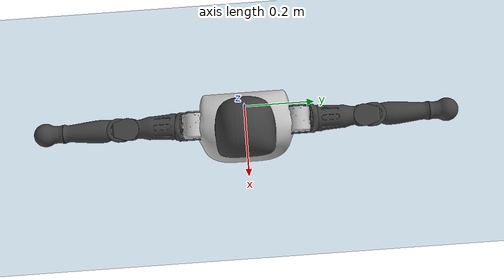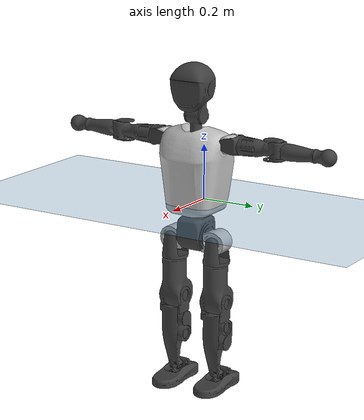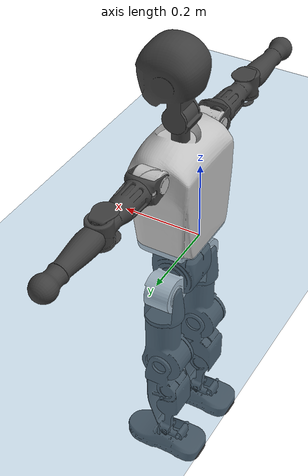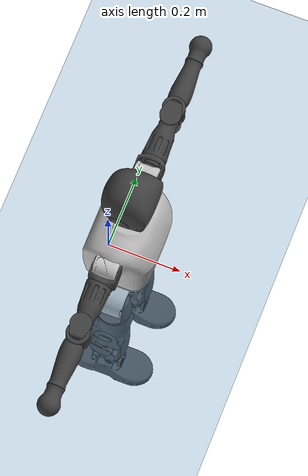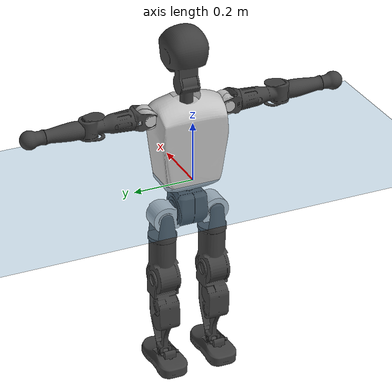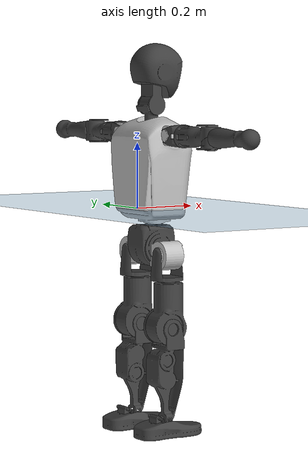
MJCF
<mujoco model="T1">
  <compiler angle="radian" assetdir="assets" balanceinertia="true" inertiafromgeom="false"/>

  <option timestep="0.005" density="1.2" viscosity="2e-05"/>

  <size nkey="1"/>

  <visual>
    <quality shadowsize="8192"/>
    <map shadowclip="0.5"/>
  </visual>

  <default>
    <default class="/">
      <joint armature="0.01" damping="0.01" frictionloss="0.1"/>
      <geom contype="0" conaffinity="0" group="1" solref="-1000 -80"/>
      <site size="0.01 0.005 0.005" group="5"/>
      <general forcelimited="true" biastype="affine" gainprm="25" biasprm="0 -25 -0.6"/>
      <default class="t1">
        <geom rgba="0.25 0.25 0.25 1"/>
        <default class="visual">
          <geom type="mesh" group="2"/>
        </default>
        <default class="collision">
          <geom group="3"/>
        </default>
        <default class="foot">
          <geom size="0.1115 0.05 0.015" type="box" condim="6" group="4" priority="1" solimp="0.015 1 0.015"/>
        </default>
        <default class="reward_collision_sphere">
          <geom group="5" rgba="1 0 0 1"/>
        </default>
      </default>
    </default>
  </default>

  <asset>
    <texture type="skybox" colorspace="auto" name="//unnamed_texture_0" builtin="gradient" rgb1="0.95 0.95 0.95" rgb2="0.95 0.95 0.95" width="100" height="600"/>
    <texture type="2d" colorspace="auto" name="texplane" builtin="checker" rgb1="0.345 0.575 0.748" rgb2="0.345 0.575 0.748" markrgb="1 1 1" width="512" height="512"/>
    <material name="MatPlane" class="/" texture="texplane" texuniform="true" texrepeat="2 2" specular="0.9"/>
    <mesh name="Trunk" class="/" file="Trunk.stl"/>
    <mesh name="H1" class="/" file="H1.stl"/>
    <mesh name="H2" class="/" file="H2.stl"/>
    <mesh name="AL1" class="/" file="AL1.stl"/>
    <mesh name="AL2" class="/" file="AL2.stl"/>
    <mesh name="AL3" class="/" file="AL3.stl"/>
    <mesh name="left_hand_link" class="/" file="left_hand_link.stl"/>
    <mesh name="AR1" class="/" file="AR1.stl"/>
    <mesh name="AR2" class="/" file="AR2.stl"/>
    <mesh name="AR3" class="/" file="AR3.stl"/>
    <mesh name="right_hand_link" class="/" file="right_hand_link.stl"/>
    <mesh name="Waist" class="/" file="Waist.stl"/>
    <mesh name="Hip_Pitch_Left" class="/" file="Hip_Pitch_Left.stl"/>
    <mesh name="Hip_Roll_Left" class="/" file="Hip_Roll_Left.stl"/>
    <mesh name="Hip_Yaw_Left" class="/" file="Hip_Yaw_Left.stl"/>
    <mesh name="Shank_Left" class="/" file="Shank_Left.stl"/>
    <mesh name="Ankle_Cross_Left" class="/" file="Ankle_Cross_Left.stl"/>
    <mesh name="left_foot_link" class="/" file="left_foot_link.stl"/>
    <mesh name="Hip_Pitch_Right" class="/" file="Hip_Pitch_Right.stl"/>
    <mesh name="Hip_Roll_Right" class="/" file="Hip_Roll_Right.stl"/>
    <mesh name="Hip_Yaw_Right" class="/" file="Hip_Yaw_Right.stl"/>
    <mesh name="Shank_Right" class="/" file="Shank_Right.stl"/>
    <mesh name="Ankle_Cross_Right" class="/" file="Ankle_Cross_Right.stl"/>
    <mesh name="right_foot_link" class="/" file="right_foot_link.stl"/>
  </asset>

  <worldbody>
    <geom name="floor" class="/" size="100 100 0.125" type="plane" group="0" material="MatPlane"/>
    <light name="toplight_shadow" class="/" pos="0 0 5" dir="0.0990148 0.0990148 -0.990148" type="directional" ambient="0.04 0.04 0.04" diffuse="0.55 0.55 0.55" specular="0.12 0.12 0.12"/>
    <light name="toplight_fill" class="/" pos="0 0 5" dir="0.0990148 0.0990148 -0.990148" type="directional" castshadow="false" ambient="0.04 0.04 0.04" diffuse="0.3 0.3 0.3" specular="0.08 0.08 0.08"/>
    <body name="trunk" childclass="t1" pos="0.000147397 -0.000655492 0.00147545" quat="1 1.0079e-05 1.62903e-05 -2.39467e-05">
      <inertial pos="0.0451989 -0.00212413 0.109671" quat="0.999947 0.00155501 -0.0101397 0.00113587" mass="8.52072" diaginertia="0.03402 0.0312162 0.0678645"/>
      <joint name="//unnamed_joint_0" type="free" armature="0" damping="0" frictionloss="0"/>
      <geom name="//unnamed_geom_1" class="visual" rgba="0.76 0.76 0.76 1" mesh="Trunk"/>
      <geom name="//unnamed_geom_2" class="collision" size="0.067256 0.0896746 0.134512" pos="0.0490986 0 0.12464" type="box"/>
      <geom name="//unnamed_geom_3" class="reward_collision_sphere" size="0.103126" pos="0.0490986 0 0.103867"/>
      <geom name="//unnamed_geom_4" class="reward_collision_sphere" size="0.0134512" pos="0.0490986 0.0708269 0"/>
      <geom name="//unnamed_geom_5" class="reward_collision_sphere" size="0.0134512" pos="0.0490986 -0.0708269 0"/>
      <geom name="//unnamed_geom_6" class="reward_collision_sphere" size="0.0134512" pos="0.0490986 0.0891586 0.186961"/>
      <geom name="//unnamed_geom_7" class="reward_collision_sphere" size="0.0134512" pos="0.0490986 -0.0891586 0.186961"/>
      <site name="imu" pos="0.000120931 0.010566 0.00368317" size="0.00896746"/>
      <camera name="track" pos="0 -1.66652 0" quat="0.707107 0.707107 0 0" mode="trackcom"/>
      <camera name="ego_camera" pos="0.0998339 0 0.436242" quat="-0.5 -0.5 0.5 0.5"/>
      <body name="H1" pos="0.0510305 -0.000782196 0.252951" quat="1 0.000549785 0.000758262 -0.00027364">
        <inertial pos="-0.00113014 -0.000644003 0.058926" quat="0.765217 -0.0157354 -0.00217538 0.643577" mass="0.315078" diaginertia="8.97522e-05 9.05255e-05 0.000186049"/>
        <joint name="AAHead_yaw" pos="0 0 0" axis="0.00188915 0.00463325 0.999987" range="-1.58458 1.62036" armature="0.00873347" damping="0.00145153" frictionloss="0.0866965"/>
        <geom name="//unnamed_geom_8" class="visual" mesh="H1"/>
        <body name="H2" pos="-0.000485471 0.000428656 0.0614412" quat="0.999999 0.000563023 0.000592038 0.00100557">
          <inertial pos="0.00600368 0.00110225 0.10374" quat="0.9886 0.106573 -0.0751848 -0.0752264" mass="0.454405" diaginertia="0.000747375 0.000776539 0.00203929"/>
          <joint name="Head_pitch" pos="0 0 0" axis="-0.00639983 -0.999979 0.00141413" range="-1.24067 0.348597" armature="0.00919832" damping="0.00807177" frictionloss="0.0906839"/>
          <geom name="//unnamed_geom_9" class="visual" mesh="H2"/>
          <geom name="//unnamed_geom_10" class="collision" size="0.0717397" pos="0.0081831 0 0.114254"/>
          <geom name="//unnamed_geom_11" class="reward_collision_sphere" size="0.0807072" pos="0.0163662 0 0.103867"/>
        </body>
      </body>
      <body name="AL1" pos="0.0491246 0.089776 0.226933" quat="1 0.00024695 0.000686599 -0.000166043">
        <inertial pos="-0.00164105 0.0368818 -8.67883e-05" quat="0.509226 0.49912 -0.50526 0.486087" mass="0.378334" diaginertia="0.000495481 0.000511125 0.000345702"/>
        <joint name="Left_Shoulder_Pitch" pos="0 0 0" axis="-0.00338483 0.999994 0.000108816" range="-3.25843 1.21843" armature="0.00845773" damping="0.00714217" frictionloss="0.0916806"/>
        <geom name="//unnamed_geom_12" class="visual" rgba="0.76 0.76 0.76 1" mesh="AL1"/>
        <body name="AL2" pos="0.00193389 0.0401374 0.000253253" quat="0.999999 -0.000783508 0.000592024 0.00051897">
          <inertial pos="0.00575825 0.0315965 -0.00038144" quat="0.487914 0.511803 -0.487757 0.511947" mass="0.111675" diaginertia="0.00014307 0.000134151 0.000206219"/>
          <joint name="Left_Shoulder_Roll" pos="0 0 0" axis="-0.999996 -0.00116613 0.00258979" range="-1.56896 1.75625" armature="0.00934973" damping="0.0135636" frictionloss="0.0894467"/>
          <geom name="//unnamed_geom_13" class="visual" mesh="AL2"/>
          <body name="AL3" pos="0.000553236 0.0513644 -0.00054447" quat="0.999999 -0.000445343 -0.000820696 -0.000556891">
            <inertial pos="0.0020269 0.0704651 -0.000731742" quat="0.706704 0.70739 0.012576 0.00318403" mass="0.760109" diaginertia="0.00493926 0.00548041 0.000780356"/>
            <joint name="Left_Elbow_Pitch" pos="0 0 0" axis="0.0030314 -0.999986 -0.00439839" range="-2.28492 2.31949" armature="0.00979017" damping="0.00998256" frictionloss="0.101112"/>
            <geom name="//unnamed_geom_14" class="visual" mesh="AL3"/>
            <geom name="//unnamed_geom_15" class="collision" size="0.0269024 0.067256" pos="0 0.0416629 0" quat="0.707105 0.707108 0 0" type="cylinder"/>
            <geom name="//unnamed_geom_16" class="reward_collision_sphere" size="0.0322829"/>
            <body name="left_hand_link" pos="0.000451196 0.122044 0.00043621" quat="0.999999 -0.00041273 0.000492076 -0.00104834">
              <inertial pos="0.000698251 0.0926287 0.000959156" quat="0.705152 0.70905 -0.00288482 -0.000657642" mass="0.236036" diaginertia="0.00308214 0.00332648 0.000252882"/>
              <joint name="Left_Elbow_Yaw" pos="0 0 0" axis="-0.00970507 0.00730524 0.999926" range="-2.43887 0.0519388" armature="0.00821033" damping="0.00146019" frictionloss="0.089362"/>
              <geom name="//unnamed_geom_17" class="visual" mesh="left_hand_link"/>
              <geom name="//unnamed_geom_18" class="collision" size="0.0269024 0.0784653" pos="0 0.108323 0" quat="0.707105 0.707108 0 0" type="cylinder"/>
              <geom name="//unnamed_geom_19" class="reward_collision_sphere" size="0.0448373"/>
              <geom name="//unnamed_geom_20" class="reward_collision_sphere" size="0.0313861" pos="0 0.0916583 0"/>
              <geom name="//unnamed_geom_21" class="reward_collision_sphere" size="0.0313861" pos="0 0.17915 0"/>
            </body>
          </body>
        </body>
      </body>
      <body name="AR1" pos="0.0475646 -0.085181 0.224741" quat="1 -0.000286063 0.000208888 -0.000160541">
        <inertial pos="-0.00139233 -0.0398426 0.000453417" quat="0.507433 0.49617 -0.500104 0.496208" mass="0.382845" diaginertia="0.0004998 0.000520588 0.000352243"/>
        <joint name="Right_Shoulder_Pitch" pos="0 0 0" axis="-0.0145164 -0.999894 0.00127799" range="-1.22675 3.35693" armature="0.00930362" damping="0.00506599" frictionloss="0.0785757"/>
        <geom name="//unnamed_geom_22" class="visual" rgba="0.76 0.76 0.76 1" mesh="AR1"/>
        <body name="AR2" pos="0.0020321 -0.0398489 -0.000930134" quat="1 -6.06709e-05 8.15071e-05 2.19745e-05">
          <inertial pos="0.00463271 -0.0317761 0.000130285" quat="0.509059 0.488693 -0.510049 0.491821" mass="0.122394" diaginertia="0.000152133 0.000143013 0.000218354"/>
          <joint name="Right_Shoulder_Roll" pos="0 0 0" axis="-0.999998 -0.00198691 0.000890856" range="-1.74717 1.59889" armature="0.00918228" damping="0" frictionloss="0.0976766"/>
          <geom name="//unnamed_geom_23" class="visual" mesh="AR2"/>
          <body name="AR3" pos="-0.00246327 -0.0517855 -0.000908778" quat="1 -5.74579e-05 6.38046e-05 -1.6121e-05">
            <inertial pos="-0.00012097 -0.0696595 0.000734821" quat="0.707156 0.707054 0.00146842 0.00201652" mass="0.774365" diaginertia="0.00487138 0.00530104 0.000777774"/>
            <joint name="Right_Elbow_Pitch" pos="0 0 0" axis="-0.00305454 0.999995 8.38978e-06" range="-2.30297 2.22833" armature="0.00874321" damping="0.0159944" frictionloss="0.0901141"/>
            <geom name="//unnamed_geom_24" class="visual" mesh="AR3"/>
            <geom name="//unnamed_geom_25" class="collision" size="0.0269024 0.067256" pos="0 -0.0416629 0" quat="0.707105 0.707108 0 0" type="cylinder"/>
            <geom name="//unnamed_geom_26" class="reward_collision_sphere" size="0.0322829"/>
            <body name="right_hand_link" pos="-0.000720389 -0.122509 0.00108361" quat="1 7.29155e-05 -0.00018868 -0.000138235">
              <inertial pos="-0.000342471 -0.0911143 -0.00138712" quat="0.706504 0.707698 0.00331486 0.00204071" mass="0.226432" diaginertia="0.00296541 0.00325019 0.000257657"/>
              <joint name="Right_Elbow_Yaw" pos="0 0 0" axis="0.00273679 0.00897922 0.999956" range="-0.0185398 2.47884" armature="0.00900376" damping="0.0075906" frictionloss="0.087999"/>
              <geom name="//unnamed_geom_27" class="visual" mesh="right_hand_link"/>
              <geom name="//unnamed_geom_28" class="collision" size="0.0269024 0.0784653" pos="0 -0.108323 0" quat="0.707105 0.707108 0 0" type="cylinder"/>
              <geom name="//unnamed_geom_29" class="reward_collision_sphere" size="0.0448373"/>
              <geom name="//unnamed_geom_30" class="reward_collision_sphere" size="0.0313861" pos="0 -0.0916583 0"/>
              <geom name="//unnamed_geom_31" class="reward_collision_sphere" size="0.0313861" pos="0 -0.17915 0"/>
            </body>
          </body>
        </body>
      </body>
      <body name="Waist" pos="0.0487892 -0.00235872 -0.120597" quat="1 -0.000282454 -0.000823614 -0.000158225">
        <inertial pos="0.00137264 -0.00264222 0.00710196" quat="0.98364 -6.16201e-05 -0.180124 0.0029219" mass="1.83351" diaginertia="0.00190478 0.00205937 0.00560866"/>
        <joint name="Waist" pos="0 0 0" axis="0.00218521 0.00405896 0.999989" range="-1.57496 1.56924" armature="0.00847602" damping="0.00122556" frictionloss="0.0787999"/>
        <geom name="//unnamed_geom_32" class="visual" mesh="Waist"/>
        <body name="Hip_Pitch_Left" pos="0.000664842 0.0863431 0.00166113" quat="0.999999 0.000801449 0.000400792 -0.000774318">
          <inertial pos="0.0013079 -0.00526557 -0.0192024" quat="0.975137 0.221071 0.0151525 0.00224482" mass="0.734342" diaginertia="0.000671868 0.000607087 0.00152723"/>
          <joint name="Left_Hip_Pitch" pos="0 0 0" axis="0.00503914 0.999953 -0.00832993" range="-1.79136 1.55196" armature="0.00951635" damping="0.0139596" frictionloss="0.0860763"/>
          <geom name="//unnamed_geom_33" class="visual" rgba="0.76 0.76 0.76 1" mesh="Hip_Pitch_Left"/>
          <body name="Hip_Roll_Left" pos="0.00235904 0.000183381 -0.0205444" quat="0.999999 -0.00106828 0.000488732 -0.000643169">
            <inertial pos="-0.00105916 -0.0019605 -0.0568983" quat="0.703346 -0.000954681 -0.0166966 0.710651" mass="0.27717" diaginertia="0.000618711 0.000601738 0.000624819"/>
            <joint name="Left_Hip_Roll" pos="0 0 0" axis="-0.999933 -0.00219384 -0.011407" range="-1.59485 0.248621" armature="0.00991347" damping="0.00810635" frictionloss="0.0876164"/>
            <geom name="//unnamed_geom_34" class="visual" mesh="Hip_Roll_Left"/>
            <geom name="//unnamed_geom_35" class="reward_collision_sphere" size="0.049321"/>
            <body name="Hip_Yaw_Left" pos="0.00261635 -0.0010025 -0.0836823" quat="0.999999 -0.000691258 -6.84071e-05 0.00119807">
              <inertial pos="-0.00611631 -9.41622e-05 -0.0928403" quat="0.697514 -0.0342479 -0.0335611 0.714965" mass="1.57033" diaginertia="0.00943683 0.0102774 0.00323231"/>
              <joint name="Left_Hip_Yaw" pos="0 0 0" axis="-0.003996 0.00194644 -0.99999" range="-1.02372 0.958302" armature="0.00887957" damping="0.0153078" frictionloss="0.0882784"/>
              <geom name="//unnamed_geom_36" class="visual" mesh="Hip_Yaw_Left"/>
              <geom name="//unnamed_geom_37" class="collision" size="0.0448373 0.0717397" type="cylinder"/>
              <body name="Shank_Left" pos="-0.010859 0.000369812 -0.142353" quat="1 0.0001199 -0.000117136 7.28624e-05">
                <inertial pos="-0.00293134 -0.00182057 -0.12873" quat="0.997358 -0.000807422 -0.0242245 0.0684832" mass="1.23813" diaginertia="0.0127435 0.0135598 0.00219915"/>
                <joint name="Left_Knee_Pitch" pos="0 0 0" axis="0.000791466 1 0.000362613" range="0.00108726 2.33028" armature="0.0090683" damping="0.0115163" frictionloss="0.0904898"/>
                <geom name="//unnamed_geom_38" class="visual" mesh="Shank_Left"/>
                <geom name="//unnamed_geom_39" class="collision" size="0.0448373 0.067256" pos="0 0 -0.12464" type="cylinder"/>
                <geom name="//unnamed_geom_40" class="reward_collision_sphere" size="0.0582885"/>
                <body name="Ankle_Cross_Left" pos="-0.00103515 -0.00099703 -0.288964" quat="1 -6.10391e-05 0.00014694 -9.71483e-05">
                  <inertial pos="-0.0016017 -0.000889713 -0.00831112" quat="0.443087 0.550975 0.551184 0.443054" mass="0.0547812" diaginertia="1.07219e-05 1.05143e-05 1.38849e-05"/>
                  <joint name="Left_Ankle_Pitch" pos="0 0 0" axis="-0.000387831 1 0.000480618" range="-0.850362 0.329537" armature="0.00928294" damping="0.00872555" frictionloss="0.0843272"/>
                  <geom name="//unnamed_geom_41" class="visual" mesh="Ankle_Cross_Left"/>
                  <body name="left_foot_link" pos="-0.00134239 0.00160236 -0.0121662" quat="1 0.000165778 -0.00031742 0.000200524">
                    <inertial pos="-0.00102156 0.0018153 -0.00949179" quat="0.00297296 0.622134 0.000391455 0.782905" mass="0.473145" diaginertia="0.00100875 0.000946895 0.00259831"/>
                    <joint name="Left_Ankle_Roll" pos="0 0 0" axis="-0.999979 0.00644983 0.00046757" range="-0.422709 0.489546" armature="0.0100002" damping="0.010852" frictionloss="0.0854284"/>
                    <geom name="//unnamed_geom_42" class="visual" mesh="left_foot_link"/>
                    <geom name="left_foot" class="foot" size="0.109619 0.0483297 0.0143089" pos="0.0081831 0 -0.0155801"/>
                    <geom name="//unnamed_geom_44" class="reward_collision_sphere" size="0.0466308" pos="0.0081831 0 -0.0155801"/>
                    <geom name="//unnamed_geom_45" class="reward_collision_sphere" size="0.0269024" pos="0.0777395 -0.0191649 -0.0155801"/>
                    <geom name="//unnamed_geom_46" class="reward_collision_sphere" size="0.0269024" pos="-0.0572817 -0.0191649 -0.0155801"/>
                    <site name="left_foot" class="foot" pos="0.0081831 0 -0.0155801" size="0.00896746"/>
                  </body>
                </body>
              </body>
            </body>
          </body>
        </body>
        <body name="Hip_Pitch_Right" pos="0.00136177 -0.0883125 -0.00155541" quat="1 -2.34469e-10 1.68561e-08 -1.69584e-08">
          <inertial pos="-0.00172834 0.00616294 -0.0184134" quat="0.973473 -0.228335 0.0141666 -0.00357807" mass="0.745665" diaginertia="0.000667584 0.000589984 0.00151806"/>
          <joint name="Right_Hip_Pitch" pos="0 0 0" axis="0.00347227 -0.999989 0.0031895" range="-1.59031 1.79037" armature="0.0101571" damping="0.0120902" frictionloss="0.0907559"/>
          <geom name="//unnamed_geom_47" class="visual" rgba="0.76 0.76 0.76 1" mesh="Hip_Pitch_Right"/>
          <body name="Hip_Roll_Right" pos="7.70341e-05 -0.000681505 -0.0188663" quat="1 2.80409e-05 -4.83792e-05 -1.31365e-05">
            <inertial pos="0.00149544 -0.00293661 -0.0570754" quat="0.704243 0.00425178 -0.00400869 0.709935" mass="0.266664" diaginertia="0.000618108 0.000592613 0.00060229"/>
            <joint name="Right_Hip_Roll" pos="0 0 0" axis="-0.999994 0.00300815 -0.00171824" range="-0.209345 1.5707" armature="0.00910589" damping="0.00250515" frictionloss="0.0827284"/>
            <geom name="//unnamed_geom_48" class="visual" mesh="Hip_Roll_Right"/>
            <geom name="//unnamed_geom_49" class="reward_collision_sphere" size="0.049321"/>
            <body name="Hip_Yaw_Right" pos="0.00217776 -0.00112495 -0.0848564" quat="1 0.000799418 0.00052209 -0.000101311">
              <inertial pos="-0.00495159 -0.0030587 -0.0932858" quat="0.713883 -0.0334716 -0.0296488 0.698836" mass="1.51898" diaginertia="0.0091772 0.00986572 0.00307325"/>
              <joint name="Right_Hip_Yaw" pos="0 0 0" axis="-0.00347659 -0.00674629 -0.999971" range="-1.01019 1.04176" armature="0.00931954" damping="0.00541365" frictionloss="0.0896998"/>
              <geom name="//unnamed_geom_50" class="visual" mesh="Hip_Yaw_Right"/>
              <geom name="//unnamed_geom_51" class="collision" size="0.0448373 0.0717397" type="cylinder"/>
              <body name="Shank_Right" pos="-0.0108805 -0.00144144 -0.138369" quat="1 -0.000198391 9.9924e-05 -0.000133779">
                <inertial pos="-0.0043104 0.000527342 -0.127032" quat="0.999285 -0.00111475 -0.0199299 -0.0321107" mass="1.25979" diaginertia="0.0122139 0.0138894 0.00232727"/>
                <joint name="Right_Knee_Pitch" pos="0 0 0" axis="0.000603523 -1 0.000302138" range="-2.34416 -0.016885" armature="0.00901843" damping="0.00340674" frictionloss="0.0909267"/>
                <geom name="//unnamed_geom_52" class="visual" mesh="Shank_Right"/>
                <geom name="//unnamed_geom_53" class="collision" size="0.0448373 0.067256" pos="0 0 -0.12464" type="cylinder"/>
                <geom name="//unnamed_geom_54" class="reward_collision_sphere" size="0.0582885"/>
                <body name="Ankle_Cross_Right" pos="0.0010727 -0.00150572 -0.291088" quat="1 -0.000384645 -0.00047843 0.000572637">
                  <inertial pos="-0.00192115 -2.67052e-05 -0.0107181" quat="0.436274 0.557775 0.555062 0.436416" mass="0.0511815" diaginertia="1.00179e-05 1.02287e-05 1.29222e-05"/>
                  <joint name="Right_Ankle_Pitch" pos="0 0 0" axis="0.00510871 -0.999948 -0.00887854" range="-0.326469 0.851324" armature="0.0091169" damping="0" frictionloss="0.0820125"/>
                  <geom name="//unnamed_geom_55" class="visual" mesh="Ankle_Cross_Right"/>
                  <body name="right_foot_link" pos="-0.000978845 -0.000644591 -0.0128154" quat="1 0.000199246 0.000264651 0.000215276">
                    <inertial pos="-0.00260588 -0.0014943 -0.00931943" quat="-0.00257858 0.621272 0.00510331 0.783574" mass="0.493755" diaginertia="0.00100323 0.000969234 0.0026405"/>
                    <joint name="Right_Ankle_Roll" pos="0 0 0" axis="-1 0.000177228 -0.000376874" range="-0.423217 0.449131" armature="0.00890007" damping="0.0208084" frictionloss="0.0911095"/>
                    <geom name="//unnamed_geom_56" class="visual" mesh="right_foot_link"/>
                    <geom name="right_foot" class="foot" size="0.0945736 0.0457959 0.0133753" pos="0.0081831 0 -0.0155801"/>
                    <geom name="//unnamed_geom_58" class="reward_collision_sphere" size="0.0358698"/>
                    <geom name="//unnamed_geom_59" class="reward_collision_sphere" size="0.0269024" pos="0.0081831 0 -0.0155801"/>
                    <geom name="//unnamed_geom_60" class="reward_collision_sphere" size="0.0269024" pos="0.0777395 0.0191649 -0.0155801"/>
                    <geom name="//unnamed_geom_61" class="reward_collision_sphere" size="0.0269024" pos="-0.0572817 0.0191649 -0.0155801"/>
                    <site name="right_foot" class="foot" pos="0.0081831 0 -0.0155801" size="0.00896746"/>
                  </body>
                </body>
              </body>
            </body>
          </body>
        </body>
      </body>
    </body>
  </worldbody>

  <contact>
    <pair class="/" geom1="floor" geom2="left_foot" name="//unnamed_contact_0"/>
    <pair class="/" geom1="floor" geom2="right_foot" name="//unnamed_contact_1"/>
  </contact>

  <actuator>
    <general name="AAHead_yaw" class="/" joint="AAHead_yaw" forcerange="-6.52714 6.52714" gainprm="22.071" biasprm="0 -22.071 -0.518256"/>
    <general name="Head_pitch" class="/" joint="Head_pitch" forcerange="-6.57615 6.57615" gainprm="22.071" biasprm="0 -22.071 -0.518256"/>
    <general name="Left_Shoulder_Pitch" class="/" joint="Left_Shoulder_Pitch" forcerange="-16.5062 16.5062" gainprm="22.071" biasprm="0 -22.071 -0.518256"/>
    <general name="Left_Shoulder_Roll" class="/" joint="Left_Shoulder_Roll" forcerange="-16.2105 16.2105" gainprm="22.071" biasprm="0 -22.071 -0.518256"/>
    <general name="Left_Elbow_Pitch" class="/" joint="Left_Elbow_Pitch" forcerange="-17.6067 17.6067" gainprm="22.071" biasprm="0 -22.071 -0.518256"/>
    <general name="Left_Elbow_Yaw" class="/" joint="Left_Elbow_Yaw" forcerange="-15.7516 15.7516" gainprm="22.071" biasprm="0 -22.071 -0.518256"/>
    <general name="Right_Shoulder_Pitch" class="/" joint="Right_Shoulder_Pitch" forcerange="-14.7177 14.7177" gainprm="22.071" biasprm="0 -22.071 -0.518256"/>
    <general name="Right_Shoulder_Roll" class="/" joint="Right_Shoulder_Roll" forcerange="-15.9746 15.9746" gainprm="22.071" biasprm="0 -22.071 -0.518256"/>
    <general name="Right_Elbow_Pitch" class="/" joint="Right_Elbow_Pitch" forcerange="-17.6352 17.6352" gainprm="22.071" biasprm="0 -22.071 -0.518256"/>
    <general name="Right_Elbow_Yaw" class="/" joint="Right_Elbow_Yaw" forcerange="-15.664 15.664" gainprm="22.071" biasprm="0 -22.071 -0.518256"/>
    <general name="Waist" class="/" joint="Waist" forcerange="-27.7006 27.7006" gainprm="22.071" biasprm="0 -22.071 -0.518256"/>
    <general name="Left_Hip_Pitch" class="/" joint="Left_Hip_Pitch" forcerange="-41.7351 41.7351" gainprm="22.071" biasprm="0 -22.071 -0.518256"/>
    <general name="Left_Hip_Roll" class="/" joint="Left_Hip_Roll" forcerange="-29.1414 29.1414" gainprm="22.071" biasprm="0 -22.071 -0.518256"/>
    <general name="Left_Hip_Yaw" class="/" joint="Left_Hip_Yaw" forcerange="-24.3285 24.3285" gainprm="22.071" biasprm="0 -22.071 -0.518256"/>
    <general name="Left_Knee_Pitch" class="/" joint="Left_Knee_Pitch" forcerange="-56.409 56.409" gainprm="22.071" biasprm="0 -22.071 -0.518256"/>
    <general name="Left_Ankle_Pitch" class="/" joint="Left_Ankle_Pitch" forcerange="-16.1872 16.1872" gainprm="22.071" biasprm="0 -22.071 -0.518256"/>
    <general name="Left_Ankle_Roll" class="/" joint="Left_Ankle_Roll" forcerange="-13.1809 13.1809" gainprm="22.071" biasprm="0 -22.071 -0.518256"/>
    <general name="Right_Hip_Pitch" class="/" joint="Right_Hip_Pitch" forcerange="-40.6024 40.6024" gainprm="22.071" biasprm="0 -22.071 -0.518256"/>
    <general name="Right_Hip_Roll" class="/" joint="Right_Hip_Roll" forcerange="-26.6777 26.6777" gainprm="22.071" biasprm="0 -22.071 -0.518256"/>
    <general name="Right_Hip_Yaw" class="/" joint="Right_Hip_Yaw" forcerange="-26.8111 26.8111" gainprm="22.071" biasprm="0 -22.071 -0.518256"/>
    <general name="Right_Knee_Pitch" class="/" joint="Right_Knee_Pitch" forcerange="-57.7144 57.7144" gainprm="22.071" biasprm="0 -22.071 -0.518256"/>
    <general name="Right_Ankle_Pitch" class="/" joint="Right_Ankle_Pitch" forcerange="-18.2604 18.2604" gainprm="22.071" biasprm="0 -22.071 -0.518256"/>
    <general name="Right_Ankle_Roll" class="/" joint="Right_Ankle_Roll" forcerange="-12.2389 12.2389" gainprm="22.071" biasprm="0 -22.071 -0.518256"/>
  </actuator>

  <sensor>
    <gyro site="imu" name="imu_angular_velocity"/>
    <velocimeter site="imu" name="imu_linear_velocity"/>
    <framelinvel objtype="site" objname="left_foot" name="left_foot_global_linear_velocity"/>
    <framelinvel objtype="site" objname="right_foot" name="right_foot_global_linear_velocity"/>
  </sensor>

  <keyframe>
    <key name="home" qpos="0 0 0.6385 1 0 0 0 0 0 0 1.4 0 -0.4 0 -1.4 0 0.4 0 -0.4 0 0 0.8 -0.4 0 0.4 0 0 -0.8 0.4 0"/>
  </keyframe>
</mujoco>
